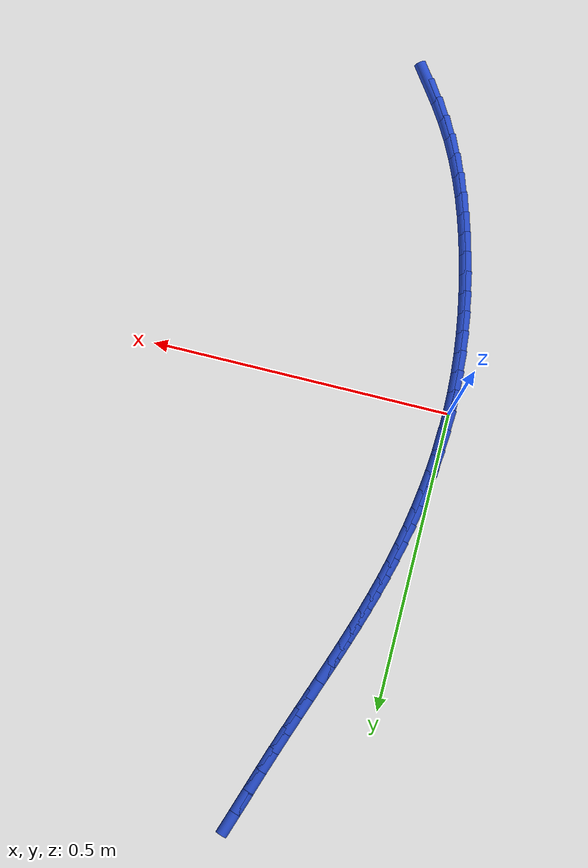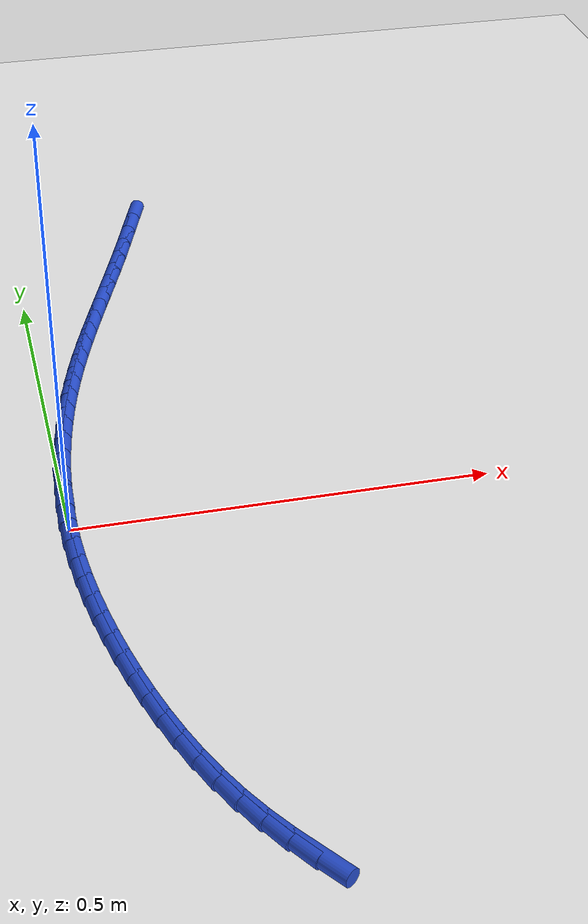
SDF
<sdf version="1.6">
 <world name="default">
  <model name="ground_plane">
   <static>1</static>
   <link name="link">
    <collision name="collision">
     <geometry><plane><normal>0 0 1</normal><size>100 100</size></plane></geometry>
     <surface><friction><ode><mu>100</mu><mu2>50</mu2></ode></friction></surface>
    </collision>
    <visual name="visual">
     <cast_shadows>0</cast_shadows>
     <geometry><plane><normal>0 0 1</normal><size>100 100</size></plane></geometry>
     <material>
      <script><uri>file://media/materials/scripts/gazebo.material</uri><name>Gazebo/WhiteGlow</name></script>
     </material>
    </visual>
   </link>
  </model>
  <model name="line">
   <link name="link_0">
    <pose>-1.3877787807814457e-17 -6.938893903907228e-18 0.01 0 1.57 1.5485829074068658</pose>
    <collision name="collision">
     <geometry><cylinder><radius>0.01</radius><length>0.08</length></cylinder></geometry>
    </collision>
    <visual name="visual">
     <material>
      <script><name>Gazebo/Blue</name><uri>file://media/materials/scripts/gazebo.material</uri></script>
     </material>
     <geometry><cylinder><radius>0.01</radius><length>0.08</length></cylinder></geometry>
    </visual>
   </link>
   <link name="link_1">
    <pose>0.0007429017941402904 0.0334383277805476 0.01 0 1.57 1.5134630559075293</pose>
    <collision name="collision">
     <geometry><cylinder><radius>0.01</radius><length>0.08</length></cylinder></geometry>
    </collision>
    <visual name="visual">
     <material>
      <script><name>Gazebo/Blue</name><uri>file://media/materials/scripts/gazebo.material</uri></script>
     </material>
     <geometry><cylinder><radius>0.01</radius><length>0.08</length></cylinder></geometry>
    </visual>
   </link>
   <link name="link_2">
    <pose>0.0026647057397864308 0.06692146473099614 0.01 0 1.57 1.4807141770336067</pose>
    <collision name="collision">
     <geometry><cylinder><radius>0.01</radius><length>0.08</length></cylinder></geometry>
    </collision>
    <visual name="visual">
     <material>
      <script><name>Gazebo/Blue</name><uri>file://media/materials/scripts/gazebo.material</uri></script>
     </material>
     <geometry><cylinder><radius>0.01</radius><length>0.08</length></cylinder></geometry>
    </visual>
   </link>
   <link name="link_3">
    <pose>0.005680466674889642 0.10030875733728085 0.01 0 1.57 1.4499795882810984</pose>
    <collision name="collision">
     <geometry><cylinder><radius>0.01</radius><length>0.08</length></cylinder></geometry>
    </collision>
    <visual name="visual">
     <material>
      <script><name>Gazebo/Blue</name><uri>file://media/materials/scripts/gazebo.material</uri></script>
     </material>
     <geometry><cylinder><radius>0.01</radius><length>0.08</length></cylinder></geometry>
    </visual>
   </link>
   <link name="link_4">
    <pose>0.00970523943740116 0.13345955208533702 0.01 0 1.57 1.4209279527296843</pose>
    <collision name="collision">
     <geometry><cylinder><radius>0.01</radius><length>0.08</length></cylinder></geometry>
    </collision>
    <visual name="visual">
     <material>
      <script><name>Gazebo/Blue</name><uri>file://media/materials/scripts/gazebo.material</uri></script>
     </material>
     <geometry><cylinder><radius>0.01</radius><length>0.08</length></cylinder></geometry>
    </visual>
   </link>
   <link name="link_5">
    <pose>0.014654078865272233 0.16623319546109994 0.01 0 1.57 1.393246669650324</pose>
    <collision name="collision">
     <geometry><cylinder><radius>0.01</radius><length>0.08</length></cylinder></geometry>
    </collision>
    <visual name="visual">
     <material>
      <script><name>Gazebo/Blue</name><uri>file://media/materials/scripts/gazebo.material</uri></script>
     </material>
     <geometry><cylinder><radius>0.01</radius><length>0.08</length></cylinder></geometry>
    </visual>
   </link>
   <link name="link_6">
    <pose>0.020442039796454085 0.19848903395050485 0.01 0 1.57 1.366634245378856</pose>
    <collision name="collision">
     <geometry><cylinder><radius>0.01</radius><length>0.08</length></cylinder></geometry>
    </collision>
    <visual name="visual">
     <material>
      <script><name>Gazebo/Blue</name><uri>file://media/materials/scripts/gazebo.material</uri></script>
     </material>
     <geometry><cylinder><radius>0.01</radius><length>0.08</length></cylinder></geometry>
    </visual>
   </link>
   <link name="link_7">
    <pose>0.026984177068897962 0.230086414039487 0.01 0 1.57 1.3408448167251408</pose>
    <collision name="collision">
     <geometry><cylinder><radius>0.01</radius><length>0.08</length></cylinder></geometry>
    </collision>
    <visual name="visual">
     <material>
      <script><name>Gazebo/Blue</name><uri>file://media/materials/scripts/gazebo.material</uri></script>
     </material>
     <geometry><cylinder><radius>0.01</radius><length>0.08</length></cylinder></geometry>
    </visual>
   </link>
   <link name="link_8">
    <pose>0.03419856837596608 0.26090500114363857 0.01 0 1.57 1.3163476057362486</pose>
    <collision name="collision">
     <geometry><cylinder><radius>0.01</radius><length>0.08</length></cylinder></geometry>
    </collision>
    <visual name="visual">
     <material>
      <script><name>Gazebo/Blue</name><uri>file://media/materials/scripts/gazebo.material</uri></script>
     </material>
     <geometry><cylinder><radius>0.01</radius><length>0.08</length></cylinder></geometry>
    </visual>
   </link>
   <link name="link_9">
    <pose>0.042034146527451445 0.2910318615810336 0.01 0 1.57 1.293926488512192</pose>
    <collision name="collision">
     <geometry><cylinder><radius>0.01</radius><length>0.08</length></cylinder></geometry>
    </collision>
    <visual name="visual">
     <material>
      <script><name>Gazebo/Blue</name><uri>file://media/materials/scripts/gazebo.material</uri></script>
     </material>
     <geometry><cylinder><radius>0.01</radius><length>0.08</length></cylinder></geometry>
    </visual>
   </link>
   <link name="link_10">
    <pose>0.05045788841886612 0.32067534980913776 0.01 0 1.57 1.2740965692798139</pose>
    <collision name="collision">
     <geometry><cylinder><radius>0.01</radius><length>0.08</length></cylinder></geometry>
    </collision>
    <visual name="visual">
     <material>
      <script><name>Gazebo/Blue</name><uri>file://media/materials/scripts/gazebo.material</uri></script>
     </material>
     <geometry><cylinder><radius>0.01</radius><length>0.08</length></cylinder></geometry>
    </visual>
   </link>
   <link name="link_11">
    <pose>0.059436998082770635 0.3500453470477267 0.01 0 1.57 1.257271168092173</pose>
    <collision name="collision">
     <geometry><cylinder><radius>0.01</radius><length>0.08</length></cylinder></geometry>
    </collision>
    <visual name="visual">
     <material>
      <script><name>Gazebo/Blue</name><uri>file://media/materials/scripts/gazebo.material</uri></script>
     </material>
     <geometry><cylinder><radius>0.01</radius><length>0.08</length></cylinder></geometry>
    </visual>
   </link>
   <link name="link_12">
    <pose>0.06893867955172554 0.37935173451657617 0.01 0 1.57 1.2437411347839498</pose>
    <collision name="collision">
     <geometry><cylinder><radius>0.01</radius><length>0.08</length></cylinder></geometry>
    </collision>
    <visual name="visual">
     <material>
      <script><name>Gazebo/Blue</name><uri>file://media/materials/scripts/gazebo.material</uri></script>
     </material>
     <geometry><cylinder><radius>0.01</radius><length>0.08</length></cylinder></geometry>
    </visual>
   </link>
   <link name="link_13">
    <pose>0.07893013685829134 0.40880439343546165 0.01 0 1.57 1.2336627364881174</pose>
    <collision name="collision">
     <geometry><cylinder><radius>0.01</radius><length>0.08</length></cylinder></geometry>
    </collision>
    <visual name="visual">
     <material>
      <script><name>Gazebo/Blue</name><uri>file://media/materials/scripts/gazebo.material</uri></script>
     </material>
     <geometry><cylinder><radius>0.01</radius><length>0.08</length></cylinder></geometry>
    </visual>
   </link>
   <link name="link_14">
    <pose>0.08937857403502862 0.4386132050241591 0.01 0 1.57 1.2270583333097542</pose>
    <collision name="collision">
     <geometry><cylinder><radius>0.01</radius><length>0.08</length></cylinder></geometry>
    </collision>
    <visual name="visual">
     <material>
      <script><name>Gazebo/Blue</name><uri>file://media/materials/scripts/gazebo.material</uri></script>
     </material>
     <geometry><cylinder><radius>0.01</radius><length>0.08</length></cylinder></geometry>
    </visual>
   </link>
   <link name="link_15">
    <pose>0.10025119511449786 0.46898805050244396 0.01 0 1.57 1.2238280481717299</pose>
    <collision name="collision">
     <geometry><cylinder><radius>0.01</radius><length>0.08</length></cylinder></geometry>
    </collision>
    <visual name="visual">
     <material>
      <script><name>Gazebo/Blue</name><uri>file://media/materials/scripts/gazebo.material</uri></script>
     </material>
     <geometry><cylinder><radius>0.01</radius><length>0.08</length></cylinder></geometry>
    </visual>
   </link>
   <link name="link_16">
    <pose>0.11151520412925965 0.5001388110900922 0.01 0 1.57 1.2237693961591118</pose>
    <collision name="collision">
     <geometry><cylinder><radius>0.01</radius><length>0.08</length></cylinder></geometry>
    </collision>
    <visual name="visual">
     <material>
      <script><name>Gazebo/Blue</name><uri>file://media/materials/scripts/gazebo.material</uri></script>
     </material>
     <geometry><cylinder><radius>0.01</radius><length>0.08</length></cylinder></geometry>
    </visual>
   </link>
   <link name="link_17">
    <pose>0.12313780511187447 0.5322753680068792 0.01 0 1.57 1.2266014269598087</pose>
    <collision name="collision">
     <geometry><cylinder><radius>0.01</radius><length>0.08</length></cylinder></geometry>
    </collision>
    <visual name="visual">
     <material>
      <script><name>Gazebo/Blue</name><uri>file://media/materials/scripts/gazebo.material</uri></script>
     </material>
     <geometry><cylinder><radius>0.01</radius><length>0.08</length></cylinder></geometry>
    </visual>
   </link>
   <link name="link_18">
    <pose>0.1350862020949029 0.5656076024725809 0.01 0 1.57 1.2319901800391935</pose>
    <collision name="collision">
     <geometry><cylinder><radius>0.01</radius><length>0.08</length></cylinder></geometry>
    </collision>
    <visual name="visual">
     <material>
      <script><name>Gazebo/Blue</name><uri>file://media/materials/scripts/gazebo.material</uri></script>
     </material>
     <geometry><cylinder><radius>0.01</radius><length>0.08</length></cylinder></geometry>
    </visual>
   </link>
   <link name="link_19">
    <pose>0.14732759911090548 0.600345395706973 0.01 0 1.57 1.2395728927162282</pose>
    <collision name="collision">
     <geometry><cylinder><radius>0.01</radius><length>0.08</length></cylinder></geometry>
    </collision>
    <visual name="visual">
     <material>
      <script><name>Gazebo/Blue</name><uri>file://media/materials/scripts/gazebo.material</uri></script>
     </material>
     <geometry><cylinder><radius>0.01</radius><length>0.08</length></cylinder></geometry>
    </visual>
   </link>
   <link name="link_20">
    <pose>0.15982920019244273 0.6366986289298311 0.01 0 1.57 1.248035596796909</pose>
    <collision name="collision">
     <geometry><cylinder><radius>0.01</radius><length>0.08</length></cylinder></geometry>
    </collision>
    <visual name="visual">
     <material>
      <script><name>Gazebo/Blue</name><uri>file://media/materials/scripts/gazebo.material</uri></script>
     </material>
     <geometry><cylinder><radius>0.01</radius><length>0.08</length></cylinder></geometry>
    </visual>
   </link>
   <link name="link_21">
    <pose>0.17257158185329466 0.6747974423504048 0.01 0 1.57 1.2503602949276234</pose>
    <collision name="collision">
     <geometry><cylinder><radius>0.01</radius><length>0.08</length></cylinder></geometry>
    </collision>
    <visual name="visual">
     <material>
      <script><name>Gazebo/Blue</name><uri>file://media/materials/scripts/gazebo.material</uri></script>
     </material>
     <geometry><cylinder><radius>0.01</radius><length>0.08</length></cylinder></geometry>
    </visual>
   </link>
   <link name="link_22">
    <pose>0.18563694767771882 0.714165967078835 0.01 0 1.57 1.2440328463826626</pose>
    <collision name="collision">
     <geometry><cylinder><radius>0.01</radius><length>0.08</length></cylinder></geometry>
    </collision>
    <visual name="visual">
     <material>
      <script><name>Gazebo/Blue</name><uri>file://media/materials/scripts/gazebo.material</uri></script>
     </material>
     <geometry><cylinder><radius>0.01</radius><length>0.08</length></cylinder></geometry>
    </visual>
   </link>
   <link name="link_243">
    <pose>0.15951060494177394 -0.5303686324950498 0.01 0 1.57 -0.9354082462222201</pose>
    <collision name="collision">
     <geometry><cylinder><radius>0.01</radius><length>0.08</length></cylinder></geometry>
    </collision>
    <visual name="visual">
     <material>
      <script><name>Gazebo/Blue</name><uri>file://media/materials/scripts/gazebo.material</uri></script>
     </material>
     <geometry><cylinder><radius>0.01</radius><length>0.08</length></cylinder></geometry>
    </visual>
   </link>
   <link name="link_244">
    <pose>0.1398441836779787 -0.5036986745870181 0.01 0 1.57 -0.983915001658215</pose>
    <collision name="collision">
     <geometry><cylinder><radius>0.01</radius><length>0.08</length></cylinder></geometry>
    </collision>
    <visual name="visual">
     <material>
      <script><name>Gazebo/Blue</name><uri>file://media/materials/scripts/gazebo.material</uri></script>
     </material>
     <geometry><cylinder><radius>0.01</radius><length>0.08</length></cylinder></geometry>
    </visual>
   </link>
   <link name="link_245">
    <pose>0.12154043544930872 -0.47617623814759324 0.01 0 1.57 -1.0397502409147594</pose>
    <collision name="collision">
     <geometry><cylinder><radius>0.01</radius><length>0.08</length></cylinder></geometry>
    </collision>
    <visual name="visual">
     <material>
      <script><name>Gazebo/Blue</name><uri>file://media/materials/scripts/gazebo.material</uri></script>
     </material>
     <geometry><cylinder><radius>0.01</radius><length>0.08</length></cylinder></geometry>
    </visual>
   </link>
   <link name="link_246">
    <pose>0.10482392047239159 -0.44771402454781295 0.01 0 1.57 -1.096133260762006</pose>
    <collision name="collision">
     <geometry><cylinder><radius>0.01</radius><length>0.08</length></cylinder></geometry>
    </collision>
    <visual name="visual">
     <material>
      <script><name>Gazebo/Blue</name><uri>file://media/materials/scripts/gazebo.material</uri></script>
     </material>
     <geometry><cylinder><radius>0.01</radius><length>0.08</length></cylinder></geometry>
    </visual>
   </link>
   <link name="link_247">
    <pose>0.08973044931824692 -0.41834050217022034 0.01 0 1.57 -1.1477260588260336</pose>
    <collision name="collision">
     <geometry><cylinder><radius>0.01</radius><length>0.08</length></cylinder></geometry>
    </collision>
    <visual name="visual">
     <material>
      <script><name>Gazebo/Blue</name><uri>file://media/materials/scripts/gazebo.material</uri></script>
     </material>
     <geometry><cylinder><radius>0.01</radius><length>0.08</length></cylinder></geometry>
    </visual>
   </link>
   <link name="link_248">
    <pose>0.07614803107272011 -0.38817479141516936 0.01 0 1.57 -1.194412909959298</pose>
    <collision name="collision">
     <geometry><cylinder><radius>0.01</radius><length>0.08</length></cylinder></geometry>
    </collision>
    <visual name="visual">
     <material>
      <script><name>Gazebo/Blue</name><uri>file://media/materials/scripts/gazebo.material</uri></script>
     </material>
     <geometry><cylinder><radius>0.01</radius><length>0.08</length></cylinder></geometry>
    </visual>
   </link>
   <link name="link_249">
    <pose>0.06396072550209127 -0.3573384349441097 0.01 0 1.57 -1.2363024838913583</pose>
    <collision name="collision">
     <geometry><cylinder><radius>0.01</radius><length>0.08</length></cylinder></geometry>
    </collision>
    <visual name="visual">
     <material>
      <script><name>Gazebo/Blue</name><uri>file://media/materials/scripts/gazebo.material</uri></script>
     </material>
     <geometry><cylinder><radius>0.01</radius><length>0.08</length></cylinder></geometry>
    </visual>
   </link>
   <link name="link_250">
    <pose>0.05305259237264058 -0.3259529754184924 0.01 0 1.57 -1.2735533201200213</pose>
    <collision name="collision">
     <geometry><cylinder><radius>0.01</radius><length>0.08</length></cylinder></geometry>
    </collision>
    <visual name="visual">
     <material>
      <script><name>Gazebo/Blue</name><uri>file://media/materials/scripts/gazebo.material</uri></script>
     </material>
     <geometry><cylinder><radius>0.01</radius><length>0.08</length></cylinder></geometry>
    </visual>
   </link>
   <link name="link_251">
    <pose>0.04330769145064822 -0.2941399554997675 0.01 0 1.57 -1.3063455684834973</pose>
    <collision name="collision">
     <geometry><cylinder><radius>0.01</radius><length>0.08</length></cylinder></geometry>
    </collision>
    <visual name="visual">
     <material>
      <script><name>Gazebo/Blue</name><uri>file://media/materials/scripts/gazebo.material</uri></script>
     </material>
     <geometry><cylinder><radius>0.01</radius><length>0.08</length></cylinder></geometry>
    </visual>
   </link>
   <link name="link_252">
    <pose>0.03461008250239411 -0.26202091784938447 0.01 0 1.57 -1.3348848433715905</pose>
    <collision name="collision">
     <geometry><cylinder><radius>0.01</radius><length>0.08</length></cylinder></geometry>
    </collision>
    <visual name="visual">
     <material>
      <script><name>Gazebo/Blue</name><uri>file://media/materials/scripts/gazebo.material</uri></script>
     </material>
     <geometry><cylinder><radius>0.01</radius><length>0.08</length></cylinder></geometry>
    </visual>
   </link>
   <link name="link_253">
    <pose>0.026844577414266643 -0.22971682413664724 0.01 0 1.57 -1.36138755625014</pose>
    <collision name="collision">
     <geometry><cylinder><radius>0.01</radius><length>0.08</length></cylinder></geometry>
    </collision>
    <visual name="visual">
     <material>
      <script><name>Gazebo/Blue</name><uri>file://media/materials/scripts/gazebo.material</uri></script>
     </material>
     <geometry><cylinder><radius>0.01</radius><length>0.08</length></cylinder></geometry>
    </visual>
   </link>
   <link name="link_254">
    <pose>0.01995573754895074 -0.19730248119969185 0.01 0 1.57 -1.3894216530043013</pose>
    <collision name="collision">
     <geometry><cylinder><radius>0.01</radius><length>0.08</length></cylinder></geometry>
    </collision>
    <visual name="visual">
     <material>
      <script><name>Gazebo/Blue</name><uri>file://media/materials/scripts/gazebo.material</uri></script>
     </material>
     <geometry><cylinder><radius>0.01</radius><length>0.08</length></cylinder></geometry>
    </visual>
   </link>
   <link name="link_255">
    <pose>0.01399029497905525 -0.16477377180637431 0.01 0 1.57 -1.419299866228118</pose>
    <collision name="collision">
     <geometry><cylinder><radius>0.01</radius><length>0.08</length></cylinder></geometry>
    </collision>
    <visual name="visual">
     <material>
      <script><name>Gazebo/Blue</name><uri>file://media/materials/scripts/gazebo.material</uri></script>
     </material>
     <geometry><cylinder><radius>0.01</radius><length>0.08</length></cylinder></geometry>
    </visual>
   </link>
   <link name="link_256">
    <pose>0.009004991374269203 -0.13211884658542733 0.01 0 1.57 -1.450968681379608</pose>
    <collision name="collision">
     <geometry><cylinder><radius>0.01</radius><length>0.08</length></cylinder></geometry>
    </collision>
    <visual name="visual">
     <material>
      <script><name>Gazebo/Blue</name><uri>file://media/materials/scripts/gazebo.material</uri></script>
     </material>
     <geometry><cylinder><radius>0.01</radius><length>0.08</length></cylinder></geometry>
    </visual>
   </link>
   <link name="link_257">
    <pose>0.005056568404281625 -0.0993258561655837 0.01 0 1.57 -1.4843532405751845</pose>
    <collision name="collision">
     <geometry><cylinder><radius>0.01</radius><length>0.08</length></cylinder></geometry>
    </collision>
    <visual name="visual">
     <material>
      <script><name>Gazebo/Blue</name><uri>file://media/materials/scripts/gazebo.material</uri></script>
     </material>
     <geometry><cylinder><radius>0.01</radius><length>0.08</length></cylinder></geometry>
    </visual>
   </link>
   <link name="link_258">
    <pose>0.0022017677387815475 -0.06638295117557616 0.01 0 1.57 -1.5193554553078699</pose>
    <collision name="collision">
     <geometry><cylinder><radius>0.01</radius><length>0.08</length></cylinder></geometry>
    </collision>
    <visual name="visual">
     <material>
      <script><name>Gazebo/Blue</name><uri>file://media/materials/scripts/gazebo.material</uri></script>
     </material>
     <geometry><cylinder><radius>0.01</radius><length>0.08</length></cylinder></geometry>
    </visual>
   </link>
   <link name="link_259">
    <pose>0.000497331047457996 -0.033278282244137425 0.01 0 1.57 -1.5558528262893603</pose>
    <collision name="collision">
     <geometry><cylinder><radius>0.01</radius><length>0.08</length></cylinder></geometry>
    </collision>
    <visual name="visual">
     <material>
      <script><name>Gazebo/Blue</name><uri>file://media/materials/scripts/gazebo.material</uri></script>
     </material>
     <geometry><cylinder><radius>0.01</radius><length>0.08</length></cylinder></geometry>
    </visual>
   </link>
   <link name="link_260">
    <pose>-2.6020852139652106e-18 -2.914335439641036e-16 0.01 0 1.57 1.5478944593677788</pose>
    <collision name="collision">
     <geometry><cylinder><radius>0.01</radius><length>0.08</length></cylinder></geometry>
    </collision>
    <visual name="visual">
     <material>
      <script><name>Gazebo/Blue</name><uri>file://media/materials/scripts/gazebo.material</uri></script>
     </material>
     <geometry><cylinder><radius>0.01</radius><length>0.08</length></cylinder></geometry>
    </visual>
   </link>
   <link name="link_261">
    <pose>0.0007665162660965867 0.0334637449281025 0.01 0 1.57 1.5088720438318064</pose>
    <collision name="collision">
     <geometry><cylinder><radius>0.01</radius><length>0.08</length></cylinder></geometry>
    </collision>
    <visual name="visual">
     <material>
      <script><name>Gazebo/Blue</name><uri>file://media/materials/scripts/gazebo.material</uri></script>
     </material>
     <geometry><cylinder><radius>0.01</radius><length>0.08</length></cylinder></geometry>
    </visual>
   </link>
   <link name="link_262">
    <pose>0.0028536215154367868 0.06712480191143817 0.01 0 1.57 1.5283097317768943</pose>
    <collision name="collision">
     <geometry><cylinder><radius>0.01</radius><length>0.08</length></cylinder></geometry>
    </collision>
    <visual name="visual">
     <material>
      <script><name>Gazebo/Blue</name><uri>file://media/materials/scripts/gazebo.material</uri></script>
     </material>
     <geometry><cylinder><radius>0.01</radius><length>0.08</length></cylinder></geometry>
    </visual>
   </link>
  </model>
 </world>
</sdf>
